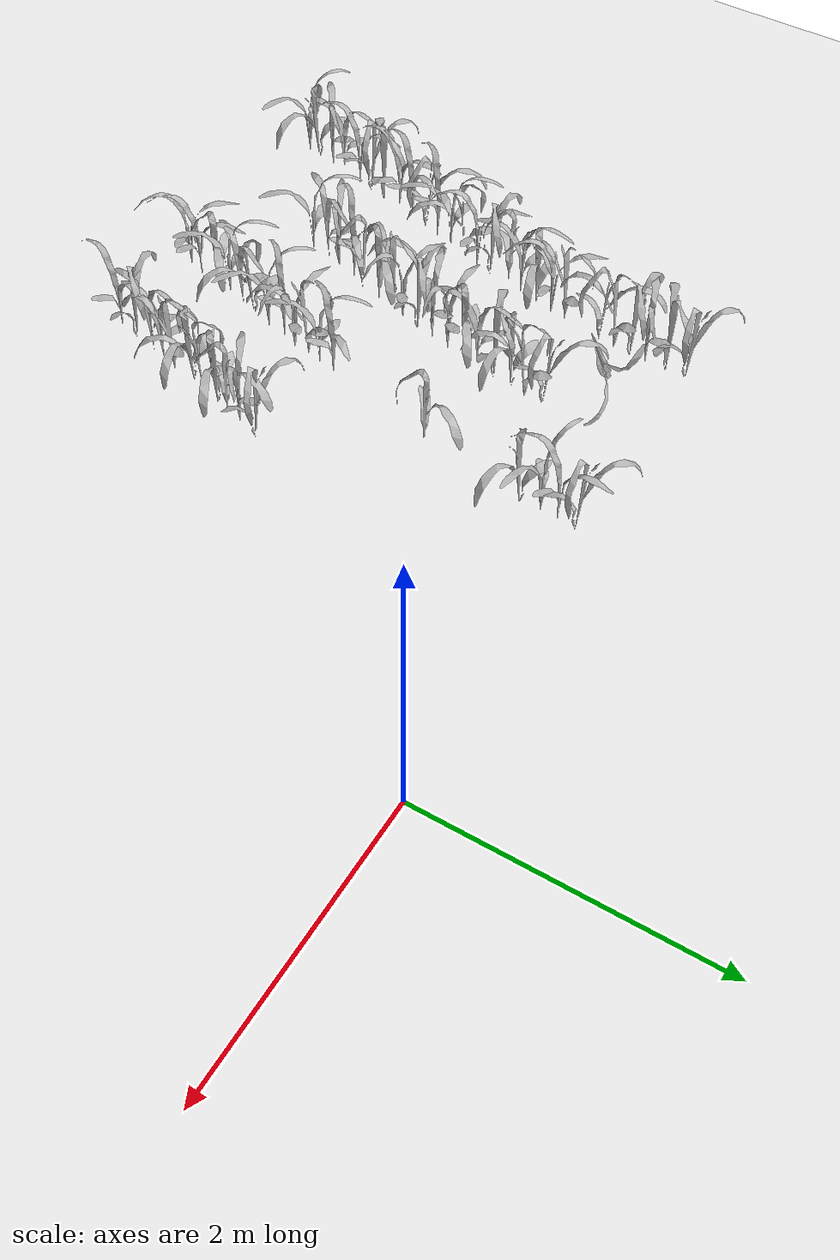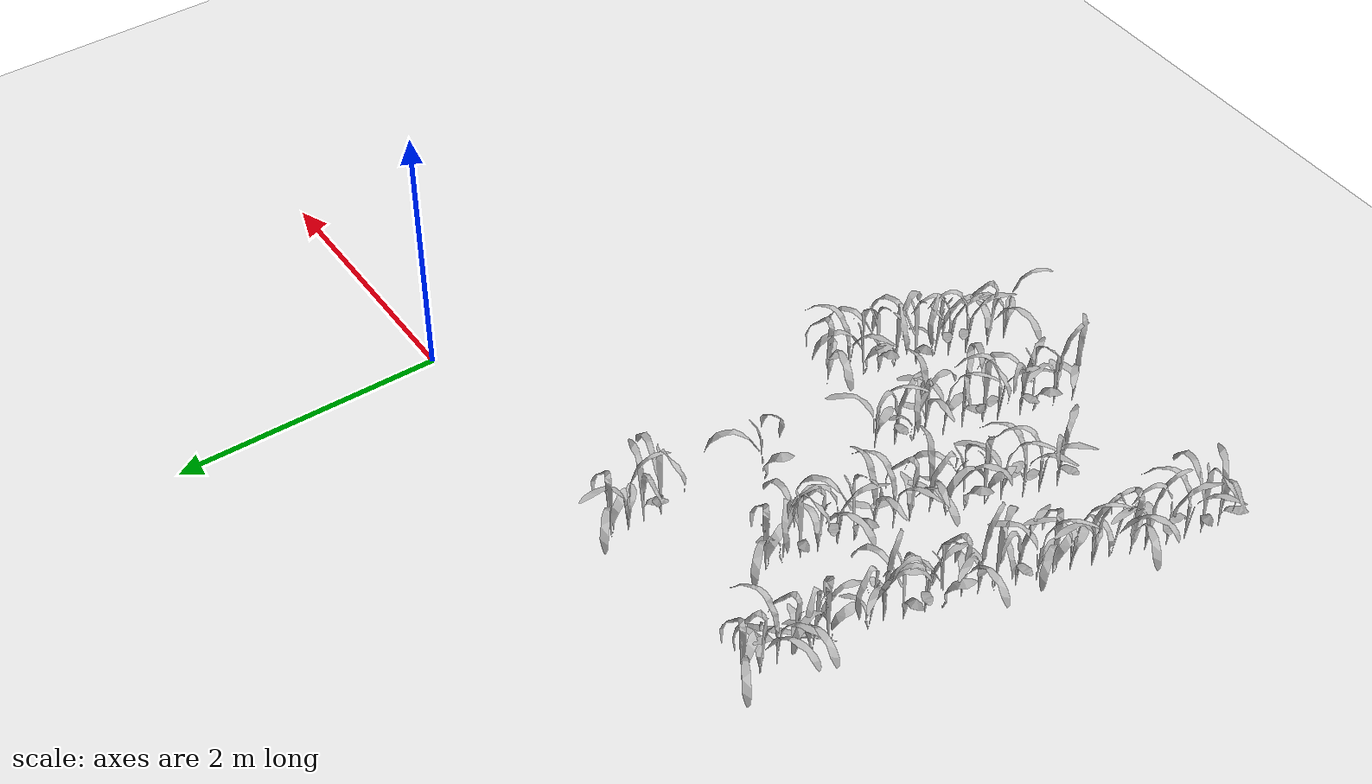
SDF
<sdf version="1.7">
 <world name="default">
  <model name="maize_02_0010">
   <pose>-4.40786 -3.49529 -1e-06 6e-06 -8.9e-05 1.60225</pose>
   <link name="maize_02_link">
    <inertial>
     <pose>0 0 0.01 0 -0 0</pose>
     <mass>0.3</mass>
     <inertia>
      <ixx>0.00334167</ixx>
      <ixy>0</ixy>
      <ixz>0</ixz>
      <iyy>0.00334167</iyy>
      <iyz>0</iyz>
      <izz>1.66667e-05</izz>
     </inertia>
     <pose>0 0 0.1 0 -0 0</pose>
    </inertial>
    <visual name="visual">
     <geometry>
      <mesh><uri>model://maize_02/meshes/maize_02.dae</uri><scale>0.683166 0.683166 0.683166</scale></mesh>
     </geometry>
    </visual>
   </link>
   <static>0</static>
  </model>
  <model name="maize_01_0011">
   <pose>-4.36571 -3.38741 -0 -5e-06 -2.8e-05 0.583081</pose>
   <link name="maize_01_link">
    <inertial>
     <pose>0 0 0.01 0 -0 0</pose>
     <mass>0.3</mass>
     <inertia>
      <ixx>0.00334167</ixx>
      <ixy>0</ixy>
      <ixz>0</ixz>
      <iyy>0.00334167</iyy>
      <iyz>0</iyz>
      <izz>1.66667e-05</izz>
     </inertia>
     <pose>0 0 0.1 0 -0 0</pose>
    </inertial>
    <visual name="visual">
     <geometry>
      <mesh><uri>model://maize_01/meshes/maize_01.dae</uri><scale>0.683166 0.683166 0.683166</scale></mesh>
     </geometry>
    </visual>
   </link>
   <static>0</static>
  </model>
  <model name="maize_02_0012">
   <pose>-4.34671 -3.25216 -1e-06 -6e-06 7.9e-05 -0.329562</pose>
   <link name="maize_02_link">
    <inertial>
     <pose>0 0 0.01 0 -0 0</pose>
     <mass>0.3</mass>
     <inertia>
      <ixx>0.00334167</ixx>
      <ixy>0</ixy>
      <ixz>0</ixz>
      <iyy>0.00334167</iyy>
      <iyz>0</iyz>
      <izz>1.66667e-05</izz>
     </inertia>
     <pose>0 0 0.1 0 -0 0</pose>
    </inertial>
    <visual name="visual">
     <geometry>
      <mesh><uri>model://maize_02/meshes/maize_02.dae</uri><scale>0.683166 0.683166 0.683166</scale></mesh>
     </geometry>
    </visual>
   </link>
   <static>0</static>
  </model>
  <model name="maize_02_0013">
   <pose>-4.31019 -3.12789 -0.000245 1.2e-05 1.4e-05 0.347552</pose>
   <link name="maize_02_link">
    <inertial>
     <pose>0 0 0.01 0 -0 0</pose>
     <mass>0.3</mass>
     <inertia>
      <ixx>0.00334167</ixx>
      <ixy>0</ixy>
      <ixz>0</ixz>
      <iyy>0.00334167</iyy>
      <iyz>0</iyz>
      <izz>1.66667e-05</izz>
     </inertia>
     <pose>0 0 0.1 0 -0 0</pose>
    </inertial>
    <visual name="visual">
     <geometry>
      <mesh><uri>model://maize_02/meshes/maize_02.dae</uri><scale>0.683166 0.683166 0.683166</scale></mesh>
     </geometry>
    </visual>
   </link>
   <static>0</static>
  </model>
  <model name="maize_02_0014">
   <pose>-4.26656 -2.97332 -0 -5e-06 -2.8e-05 -2.56514</pose>
   <link name="maize_02_link">
    <inertial>
     <pose>0 0 0.01 0 -0 0</pose>
     <mass>0.3</mass>
     <inertia>
      <ixx>0.00334167</ixx>
      <ixy>0</ixy>
      <ixz>0</ixz>
      <iyy>0.00334167</iyy>
      <iyz>0</iyz>
      <izz>1.66667e-05</izz>
     </inertia>
     <pose>0 0 0.1 0 -0 0</pose>
    </inertial>
    <visual name="visual">
     <geometry>
      <mesh><uri>model://maize_02/meshes/maize_02.dae</uri><scale>0.683166 0.683166 0.683166</scale></mesh>
     </geometry>
    </visual>
   </link>
   <static>0</static>
  </model>
  <model name="maize_01_0015">
   <pose>-4.24242 -2.86003 -0.000245 -1.4e-05 -1.2e-05 -2.74685</pose>
   <link name="maize_01_link">
    <inertial>
     <pose>0 0 0.01 0 -0 0</pose>
     <mass>0.3</mass>
     <inertia>
      <ixx>0.00334167</ixx>
      <ixy>0</ixy>
      <ixz>0</ixz>
      <iyy>0.00334167</iyy>
      <iyz>0</iyz>
      <izz>1.66667e-05</izz>
     </inertia>
     <pose>0 0 0.1 0 -0 0</pose>
    </inertial>
    <visual name="visual">
     <geometry>
      <mesh><uri>model://maize_01/meshes/maize_01.dae</uri><scale>0.683166 0.683166 0.683166</scale></mesh>
     </geometry>
    </visual>
   </link>
   <static>0</static>
  </model>
  <model name="maize_01_0016">
   <pose>-4.19923 -2.72609 -0 -4.8e-05 -6e-06 -1.69412</pose>
   <link name="maize_01_link">
    <inertial>
     <pose>0 0 0.01 0 -0 0</pose>
     <mass>0.3</mass>
     <inertia>
      <ixx>0.00334167</ixx>
      <ixy>0</ixy>
      <ixz>0</ixz>
      <iyy>0.00334167</iyy>
      <iyz>0</iyz>
      <izz>1.66667e-05</izz>
     </inertia>
     <pose>0 0 0.1 0 -0 0</pose>
    </inertial>
    <visual name="visual">
     <geometry>
      <mesh><uri>model://maize_01/meshes/maize_01.dae</uri><scale>0.683166 0.683166 0.683166</scale></mesh>
     </geometry>
    </visual>
   </link>
   <static>0</static>
  </model>
  <model name="maize_02_0017">
   <pose>-4.17695 -2.58355 -1e-06 -8.3e-05 -6e-06 -2.62048</pose>
   <link name="maize_02_link">
    <inertial>
     <pose>0 0 0.01 0 -0 0</pose>
     <mass>0.3</mass>
     <inertia>
      <ixx>0.00334167</ixx>
      <ixy>0</ixy>
      <ixz>0</ixz>
      <iyy>0.00334167</iyy>
      <iyz>0</iyz>
      <izz>1.66667e-05</izz>
     </inertia>
     <pose>0 0 0.1 0 -0 0</pose>
    </inertial>
    <visual name="visual">
     <geometry>
      <mesh><uri>model://maize_02/meshes/maize_02.dae</uri><scale>0.683166 0.683166 0.683166</scale></mesh>
     </geometry>
    </visual>
   </link>
   <static>0</static>
  </model>
  <model name="maize_02_0018">
   <pose>-4.12042 -2.44918 1e-06 2e-06 0.000116 -3.07479</pose>
   <link name="maize_02_link">
    <inertial>
     <pose>0 0 0.01 0 -0 0</pose>
     <mass>0.3</mass>
     <inertia>
      <ixx>0.00334167</ixx>
      <ixy>0</ixy>
      <ixz>0</ixz>
      <iyy>0.00334167</iyy>
      <iyz>0</iyz>
      <izz>1.66667e-05</izz>
     </inertia>
     <pose>0 0 0.1 0 -0 0</pose>
    </inertial>
    <visual name="visual">
     <geometry>
      <mesh><uri>model://maize_02/meshes/maize_02.dae</uri><scale>0.683166 0.683166 0.683166</scale></mesh>
     </geometry>
    </visual>
   </link>
   <static>0</static>
  </model>
  <model name="maize_01_0019">
   <pose>-4.09401 -2.31646 -0 -2.8e-05 5e-06 2.97261</pose>
   <link name="maize_01_link">
    <inertial>
     <pose>0 0 0.01 0 -0 0</pose>
     <mass>0.3</mass>
     <inertia>
      <ixx>0.00334167</ixx>
      <ixy>0</ixy>
      <ixz>0</ixz>
      <iyy>0.00334167</iyy>
      <iyz>0</iyz>
      <izz>1.66667e-05</izz>
     </inertia>
     <pose>0 0 0.1 0 -0 0</pose>
    </inertial>
    <visual name="visual">
     <geometry>
      <mesh><uri>model://maize_01/meshes/maize_01.dae</uri><scale>0.683166 0.683166 0.683166</scale></mesh>
     </geometry>
    </visual>
   </link>
   <static>0</static>
  </model>
  <model name="maize_02_0020">
   <pose>-4.06344 -2.20729 -1e-06 -8.9e-05 -6e-06 2.96076</pose>
   <link name="maize_02_link">
    <inertial>
     <pose>0 0 0.01 0 -0 0</pose>
     <mass>0.3</mass>
     <inertia>
      <ixx>0.00334167</ixx>
      <ixy>0</ixy>
      <ixz>0</ixz>
      <iyy>0.00334167</iyy>
      <iyz>0</iyz>
      <izz>1.66667e-05</izz>
     </inertia>
     <pose>0 0 0.1 0 -0 0</pose>
    </inertial>
    <visual name="visual">
     <geometry>
      <mesh><uri>model://maize_02/meshes/maize_02.dae</uri><scale>0.683166 0.683166 0.683166</scale></mesh>
     </geometry>
    </visual>
   </link>
   <static>0</static>
  </model>
  <model name="maize_02_0021">
   <pose>-4.01691 -2.0727 -1e-06 -6e-06 8.6e-05 0.953992</pose>
   <link name="maize_02_link">
    <inertial>
     <pose>0 0 0.01 0 -0 0</pose>
     <mass>0.3</mass>
     <inertia>
      <ixx>0.00334167</ixx>
      <ixy>0</ixy>
      <ixz>0</ixz>
      <iyy>0.00334167</iyy>
      <iyz>0</iyz>
      <izz>1.66667e-05</izz>
     </inertia>
     <pose>0 0 0.1 0 -0 0</pose>
    </inertial>
    <visual name="visual">
     <geometry>
      <mesh><uri>model://maize_02/meshes/maize_02.dae</uri><scale>0.683166 0.683166 0.683166</scale></mesh>
     </geometry>
    </visual>
   </link>
   <static>0</static>
  </model>
  <model name="maize_01_0022">
   <pose>-3.97051 -1.92991 -0.000245 -1.2e-05 1.4e-05 -0.147421</pose>
   <link name="maize_01_link">
    <inertial>
     <pose>0 0 0.01 0 -0 0</pose>
     <mass>0.3</mass>
     <inertia>
      <ixx>0.00334167</ixx>
      <ixy>0</ixy>
      <ixz>0</ixz>
      <iyy>0.00334167</iyy>
      <iyz>0</iyz>
      <izz>1.66667e-05</izz>
     </inertia>
     <pose>0 0 0.1 0 -0 0</pose>
    </inertial>
    <visual name="visual">
     <geometry>
      <mesh><uri>model://maize_01/meshes/maize_01.dae</uri><scale>0.683166 0.683166 0.683166</scale></mesh>
     </geometry>
    </visual>
   </link>
   <static>0</static>
  </model>
  <model name="maize_02_0023">
   <pose>-3.93771 -1.81544 1e-06 -3e-06 0.000156 -2.11151</pose>
   <link name="maize_02_link">
    <inertial>
     <pose>0 0 0.01 0 -0 0</pose>
     <mass>0.3</mass>
     <inertia>
      <ixx>0.00334167</ixx>
      <ixy>0</ixy>
      <ixz>0</ixz>
      <iyy>0.00334167</iyy>
      <iyz>0</iyz>
      <izz>1.66667e-05</izz>
     </inertia>
     <pose>0 0 0.1 0 -0 0</pose>
    </inertial>
    <visual name="visual">
     <geometry>
      <mesh><uri>model://maize_02/meshes/maize_02.dae</uri><scale>0.683166 0.683166 0.683166</scale></mesh>
     </geometry>
    </visual>
   </link>
   <static>0</static>
  </model>
  <model name="maize_01_0024">
   <pose>-3.90844 -1.69421 -1e-06 -8.6e-05 6e-06 -2.31971</pose>
   <link name="maize_01_link">
    <inertial>
     <pose>0 0 0.01 0 -0 0</pose>
     <mass>0.3</mass>
     <inertia>
      <ixx>0.00334167</ixx>
      <ixy>0</ixy>
      <ixz>0</ixz>
      <iyy>0.00334167</iyy>
      <iyz>0</iyz>
      <izz>1.66667e-05</izz>
     </inertia>
     <pose>0 0 0.1 0 -0 0</pose>
    </inertial>
    <visual name="visual">
     <geometry>
      <mesh><uri>model://maize_01/meshes/maize_01.dae</uri><scale>0.683166 0.683166 0.683166</scale></mesh>
     </geometry>
    </visual>
   </link>
   <static>0</static>
  </model>
  <model name="maize_01_0025">
   <pose>-3.89953 -1.5496 1e-06 -3e-06 -0.000156 2.05247</pose>
   <link name="maize_01_link">
    <inertial>
     <pose>0 0 0.01 0 -0 0</pose>
     <mass>0.3</mass>
     <inertia>
      <ixx>0.00334167</ixx>
      <ixy>0</ixy>
      <ixz>0</ixz>
      <iyy>0.00334167</iyy>
      <iyz>0</iyz>
      <izz>1.66667e-05</izz>
     </inertia>
     <pose>0 0 0.1 0 -0 0</pose>
    </inertial>
    <visual name="visual">
     <geometry>
      <mesh><uri>model://maize_01/meshes/maize_01.dae</uri><scale>0.683166 0.683166 0.683166</scale></mesh>
     </geometry>
    </visual>
   </link>
   <static>0</static>
  </model>
  <model name="maize_02_0026">
   <pose>-3.86631 -1.43265 -1e-06 6e-06 8.9e-05 0.61974</pose>
   <link name="maize_02_link">
    <inertial>
     <pose>0 0 0.01 0 -0 0</pose>
     <mass>0.3</mass>
     <inertia>
      <ixx>0.00334167</ixx>
      <ixy>0</ixy>
      <ixz>0</ixz>
      <iyy>0.00334167</iyy>
      <iyz>0</iyz>
      <izz>1.66667e-05</izz>
     </inertia>
     <pose>0 0 0.1 0 -0 0</pose>
    </inertial>
    <visual name="visual">
     <geometry>
      <mesh><uri>model://maize_02/meshes/maize_02.dae</uri><scale>0.683166 0.683166 0.683166</scale></mesh>
     </geometry>
    </visual>
   </link>
   <static>0</static>
  </model>
  <model name="maize_01_0027">
   <pose>-3.82293 -1.29197 1e-06 -0.000156 -3e-06 1.10234</pose>
   <link name="maize_01_link">
    <inertial>
     <pose>0 0 0.01 0 -0 0</pose>
     <mass>0.3</mass>
     <inertia>
      <ixx>0.00334167</ixx>
      <ixy>0</ixy>
      <ixz>0</ixz>
      <iyy>0.00334167</iyy>
      <iyz>0</iyz>
      <izz>1.66667e-05</izz>
     </inertia>
     <pose>0 0 0.1 0 -0 0</pose>
    </inertial>
    <visual name="visual">
     <geometry>
      <mesh><uri>model://maize_01/meshes/maize_01.dae</uri><scale>0.683166 0.683166 0.683166</scale></mesh>
     </geometry>
    </visual>
   </link>
   <static>0</static>
  </model>
  <model name="maize_02_0028">
   <pose>-3.7826 -1.15412 -0 2.8e-05 5e-06 -1.97203</pose>
   <link name="maize_02_link">
    <inertial>
     <pose>0 0 0.01 0 -0 0</pose>
     <mass>0.3</mass>
     <inertia>
      <ixx>0.00334167</ixx>
      <ixy>0</ixy>
      <ixz>0</ixz>
      <iyy>0.00334167</iyy>
      <iyz>0</iyz>
      <izz>1.66667e-05</izz>
     </inertia>
     <pose>0 0 0.1 0 -0 0</pose>
    </inertial>
    <visual name="visual">
     <geometry>
      <mesh><uri>model://maize_02/meshes/maize_02.dae</uri><scale>0.683166 0.683166 0.683166</scale></mesh>
     </geometry>
    </visual>
   </link>
   <static>0</static>
  </model>
  <model name="maize_01_0029">
   <pose>-3.77198 -1.04541 -0 2.8e-05 -5e-06 -1.11484</pose>
   <link name="maize_01_link">
    <inertial>
     <pose>0 0 0.01 0 -0 0</pose>
     <mass>0.3</mass>
     <inertia>
      <ixx>0.00334167</ixx>
      <ixy>0</ixy>
      <ixz>0</ixz>
      <iyy>0.00334167</iyy>
      <iyz>0</iyz>
      <izz>1.66667e-05</izz>
     </inertia>
     <pose>0 0 0.1 0 -0 0</pose>
    </inertial>
    <visual name="visual">
     <geometry>
      <mesh><uri>model://maize_01/meshes/maize_01.dae</uri><scale>0.683166 0.683166 0.683166</scale></mesh>
     </geometry>
    </visual>
   </link>
   <static>0</static>
  </model>
  <model name="maize_02_0030">
   <pose>-3.7565 -0.837103 0.009953 -1.5708 -0.00477 -0.829308</pose>
   <link name="maize_02_link">
    <inertial>
     <pose>0 0 0.01 0 -0 0</pose>
     <mass>0.3</mass>
     <inertia>
      <ixx>0.00334167</ixx>
      <ixy>0</ixy>
      <ixz>0</ixz>
      <iyy>0.00334167</iyy>
      <iyz>0</iyz>
      <izz>1.66667e-05</izz>
     </inertia>
     <pose>0 0 0.1 0 -0 0</pose>
    </inertial>
    <visual name="visual">
     <geometry>
      <mesh><uri>model://maize_02/meshes/maize_02.dae</uri><scale>0.683166 0.683166 0.683166</scale></mesh>
     </geometry>
    </visual>
   </link>
   <static>0</static>
  </model>
  <model name="maize_01_0031">
   <pose>-3.72155 -0.761612 -0 5e-06 -2.8e-05 2.68565</pose>
   <link name="maize_01_link">
    <inertial>
     <pose>0 0 0.01 0 -0 0</pose>
     <mass>0.3</mass>
     <inertia>
      <ixx>0.00334167</ixx>
      <ixy>0</ixy>
      <ixz>0</ixz>
      <iyy>0.00334167</iyy>
      <iyz>0</iyz>
      <izz>1.66667e-05</izz>
     </inertia>
     <pose>0 0 0.1 0 -0 0</pose>
    </inertial>
    <visual name="visual">
     <geometry>
      <mesh><uri>model://maize_01/meshes/maize_01.dae</uri><scale>0.683166 0.683166 0.683166</scale></mesh>
     </geometry>
    </visual>
   </link>
   <static>0</static>
  </model>
  <model name="maize_01_0032">
   <pose>-3.70659 -0.645785 -0 5e-06 -2.8e-05 -0.829071</pose>
   <link name="maize_01_link">
    <inertial>
     <pose>0 0 0.01 0 -0 0</pose>
     <mass>0.3</mass>
     <inertia>
      <ixx>0.00334167</ixx>
      <ixy>0</ixy>
      <ixz>0</ixz>
      <iyy>0.00334167</iyy>
      <iyz>0</iyz>
      <izz>1.66667e-05</izz>
     </inertia>
     <pose>0 0 0.1 0 -0 0</pose>
    </inertial>
    <visual name="visual">
     <geometry>
      <mesh><uri>model://maize_01/meshes/maize_01.dae</uri><scale>0.683166 0.683166 0.683166</scale></mesh>
     </geometry>
    </visual>
   </link>
   <static>0</static>
  </model>
  <model name="maize_01_0033">
   <pose>-3.68856 -0.516251 -0 -2.8e-05 -5e-06 -2.32412</pose>
   <link name="maize_01_link">
    <inertial>
     <pose>0 0 0.01 0 -0 0</pose>
     <mass>0.3</mass>
     <inertia>
      <ixx>0.00334167</ixx>
      <ixy>0</ixy>
      <ixz>0</ixz>
      <iyy>0.00334167</iyy>
      <iyz>0</iyz>
      <izz>1.66667e-05</izz>
     </inertia>
     <pose>0 0 0.1 0 -0 0</pose>
    </inertial>
    <visual name="visual">
     <geometry>
      <mesh><uri>model://maize_01/meshes/maize_01.dae</uri><scale>0.683166 0.683166 0.683166</scale></mesh>
     </geometry>
    </visual>
   </link>
   <static>0</static>
  </model>
  <model name="maize_02_0034">
   <pose>-3.66675 -0.396472 -0 4.8e-05 6e-06 -0.572521</pose>
   <link name="maize_02_link">
    <inertial>
     <pose>0 0 0.01 0 -0 0</pose>
     <mass>0.3</mass>
     <inertia>
      <ixx>0.00334167</ixx>
      <ixy>0</ixy>
      <ixz>0</ixz>
      <iyy>0.00334167</iyy>
      <iyz>0</iyz>
      <izz>1.66667e-05</izz>
     </inertia>
     <pose>0 0 0.1 0 -0 0</pose>
    </inertial>
    <visual name="visual">
     <geometry>
      <mesh><uri>model://maize_02/meshes/maize_02.dae</uri><scale>0.683166 0.683166 0.683166</scale></mesh>
     </geometry>
    </visual>
   </link>
   <static>0</static>
  </model>
  <model name="maize_01_0035">
   <pose>-3.68278 -0.252334 -0 -2.8e-05 -5e-06 -1.92935</pose>
   <link name="maize_01_link">
    <inertial>
     <pose>0 0 0.01 0 -0 0</pose>
     <mass>0.3</mass>
     <inertia>
      <ixx>0.00334167</ixx>
      <ixy>0</ixy>
      <ixz>0</ixz>
      <iyy>0.00334167</iyy>
      <iyz>0</iyz>
      <izz>1.66667e-05</izz>
     </inertia>
     <pose>0 0 0.1 0 -0 0</pose>
    </inertial>
    <visual name="visual">
     <geometry>
      <mesh><uri>model://maize_01/meshes/maize_01.dae</uri><scale>0.683166 0.683166 0.683166</scale></mesh>
     </geometry>
    </visual>
   </link>
   <static>0</static>
  </model>
  <model name="maize_01_0036">
   <pose>-3.67981 -0.112768 -1e-06 -8.9e-05 -6e-06 -2.89943</pose>
   <link name="maize_01_link">
    <inertial>
     <pose>0 0 0.01 0 -0 0</pose>
     <mass>0.3</mass>
     <inertia>
      <ixx>0.00334167</ixx>
      <ixy>0</ixy>
      <ixz>0</ixz>
      <iyy>0.00334167</iyy>
      <iyz>0</iyz>
      <izz>1.66667e-05</izz>
     </inertia>
     <pose>0 0 0.1 0 -0 0</pose>
    </inertial>
    <visual name="visual">
     <geometry>
      <mesh><uri>model://maize_01/meshes/maize_01.dae</uri><scale>0.683166 0.683166 0.683166</scale></mesh>
     </geometry>
    </visual>
   </link>
   <static>0</static>
  </model>
  <model name="maize_02_0076">
   <pose>-3.50202 -2.87021 -0 2.8e-05 -5e-06 1.23043</pose>
   <link name="maize_02_link">
    <inertial>
     <pose>0 0 0.01 0 -0 0</pose>
     <mass>0.3</mass>
     <inertia>
      <ixx>0.00334167</ixx>
      <ixy>0</ixy>
      <ixz>0</ixz>
      <iyy>0.00334167</iyy>
      <iyz>0</iyz>
      <izz>1.66667e-05</izz>
     </inertia>
     <pose>0 0 0.1 0 -0 0</pose>
    </inertial>
    <visual name="visual">
     <geometry>
      <mesh><uri>model://maize_02/meshes/maize_02.dae</uri><scale>0.683166 0.683166 0.683166</scale></mesh>
     </geometry>
    </visual>
   </link>
   <static>0</static>
  </model>
  <model name="maize_02_0077">
   <pose>-3.47733 -2.72731 1e-06 -3e-06 -0.000156 -0.078349</pose>
   <link name="maize_02_link">
    <inertial>
     <pose>0 0 0.01 0 -0 0</pose>
     <mass>0.3</mass>
     <inertia>
      <ixx>0.00334167</ixx>
      <ixy>0</ixy>
      <ixz>0</ixz>
      <iyy>0.00334167</iyy>
      <iyz>0</iyz>
      <izz>1.66667e-05</izz>
     </inertia>
     <pose>0 0 0.1 0 -0 0</pose>
    </inertial>
    <visual name="visual">
     <geometry>
      <mesh><uri>model://maize_02/meshes/maize_02.dae</uri><scale>0.683166 0.683166 0.683166</scale></mesh>
     </geometry>
    </visual>
   </link>
   <static>0</static>
  </model>
  <model name="maize_02_0078">
   <pose>-3.43995 -2.61803 -0 5e-06 2.8e-05 -0.448794</pose>
   <link name="maize_02_link">
    <inertial>
     <pose>0 0 0.01 0 -0 0</pose>
     <mass>0.3</mass>
     <inertia>
      <ixx>0.00334167</ixx>
      <ixy>0</ixy>
      <ixz>0</ixz>
      <iyy>0.00334167</iyy>
      <iyz>0</iyz>
      <izz>1.66667e-05</izz>
     </inertia>
     <pose>0 0 0.1 0 -0 0</pose>
    </inertial>
    <visual name="visual">
     <geometry>
      <mesh><uri>model://maize_02/meshes/maize_02.dae</uri><scale>0.683166 0.683166 0.683166</scale></mesh>
     </geometry>
    </visual>
   </link>
   <static>0</static>
  </model>
  <model name="maize_02_0079">
   <pose>-3.38802 -2.46608 -0 -4.8e-05 -6e-06 2.88127</pose>
   <link name="maize_02_link">
    <inertial>
     <pose>0 0 0.01 0 -0 0</pose>
     <mass>0.3</mass>
     <inertia>
      <ixx>0.00334167</ixx>
      <ixy>0</ixy>
      <ixz>0</ixz>
      <iyy>0.00334167</iyy>
      <iyz>0</iyz>
      <izz>1.66667e-05</izz>
     </inertia>
     <pose>0 0 0.1 0 -0 0</pose>
    </inertial>
    <visual name="visual">
     <geometry>
      <mesh><uri>model://maize_02/meshes/maize_02.dae</uri><scale>0.683166 0.683166 0.683166</scale></mesh>
     </geometry>
    </visual>
   </link>
   <static>0</static>
  </model>
  <model name="maize_01_0080">
   <pose>-3.33888 -2.36785 -1e-06 8.6e-05 -6e-06 2.50035</pose>
   <link name="maize_01_link">
    <inertial>
     <pose>0 0 0.01 0 -0 0</pose>
     <mass>0.3</mass>
     <inertia>
      <ixx>0.00334167</ixx>
      <ixy>0</ixy>
      <ixz>0</ixz>
      <iyy>0.00334167</iyy>
      <iyz>0</iyz>
      <izz>1.66667e-05</izz>
     </inertia>
     <pose>0 0 0.1 0 -0 0</pose>
    </inertial>
    <visual name="visual">
     <geometry>
      <mesh><uri>model://maize_01/meshes/maize_01.dae</uri><scale>0.683166 0.683166 0.683166</scale></mesh>
     </geometry>
    </visual>
   </link>
   <static>0</static>
  </model>
  <model name="maize_01_0081">
   <pose>-3.30256 -2.21604 -0 2.8e-05 5e-06 1.55681</pose>
   <link name="maize_01_link">
    <inertial>
     <pose>0 0 0.01 0 -0 0</pose>
     <mass>0.3</mass>
     <inertia>
      <ixx>0.00334167</ixx>
      <ixy>0</ixy>
      <ixz>0</ixz>
      <iyy>0.00334167</iyy>
      <iyz>0</iyz>
      <izz>1.66667e-05</izz>
     </inertia>
     <pose>0 0 0.1 0 -0 0</pose>
    </inertial>
    <visual name="visual">
     <geometry>
      <mesh><uri>model://maize_01/meshes/maize_01.dae</uri><scale>0.683166 0.683166 0.683166</scale></mesh>
     </geometry>
    </visual>
   </link>
   <static>0</static>
  </model>
  <model name="maize_01_0082">
   <pose>-3.2827 -2.08157 -0 5e-06 -2.8e-05 -1.41117</pose>
   <link name="maize_01_link">
    <inertial>
     <pose>0 0 0.01 0 -0 0</pose>
     <mass>0.3</mass>
     <inertia>
      <ixx>0.00334167</ixx>
      <ixy>0</ixy>
      <ixz>0</ixz>
      <iyy>0.00334167</iyy>
      <iyz>0</iyz>
      <izz>1.66667e-05</izz>
     </inertia>
     <pose>0 0 0.1 0 -0 0</pose>
    </inertial>
    <visual name="visual">
     <geometry>
      <mesh><uri>model://maize_01/meshes/maize_01.dae</uri><scale>0.683166 0.683166 0.683166</scale></mesh>
     </geometry>
    </visual>
   </link>
   <static>0</static>
  </model>
  <model name="maize_02_0083">
   <pose>-3.22256 -1.97658 -0 5e-06 -2.8e-05 -1.33515</pose>
   <link name="maize_02_link">
    <inertial>
     <pose>0 0 0.01 0 -0 0</pose>
     <mass>0.3</mass>
     <inertia>
      <ixx>0.00334167</ixx>
      <ixy>0</ixy>
      <ixz>0</ixz>
      <iyy>0.00334167</iyy>
      <iyz>0</iyz>
      <izz>1.66667e-05</izz>
     </inertia>
     <pose>0 0 0.1 0 -0 0</pose>
    </inertial>
    <visual name="visual">
     <geometry>
      <mesh><uri>model://maize_02/meshes/maize_02.dae</uri><scale>0.683166 0.683166 0.683166</scale></mesh>
     </geometry>
    </visual>
   </link>
   <static>0</static>
  </model>
  <model name="maize_01_0084">
   <pose>-3.18759 -1.83846 -0 2.8e-05 -5e-06 -2.23258</pose>
   <link name="maize_01_link">
    <inertial>
     <pose>0 0 0.01 0 -0 0</pose>
     <mass>0.3</mass>
     <inertia>
      <ixx>0.00334167</ixx>
      <ixy>0</ixy>
      <ixz>0</ixz>
      <iyy>0.00334167</iyy>
      <iyz>0</iyz>
      <izz>1.66667e-05</izz>
     </inertia>
     <pose>0 0 0.1 0 -0 0</pose>
    </inertial>
    <visual name="visual">
     <geometry>
      <mesh><uri>model://maize_01/meshes/maize_01.dae</uri><scale>0.683166 0.683166 0.683166</scale></mesh>
     </geometry>
    </visual>
   </link>
   <static>0</static>
  </model>
  <model name="maize_02_0085">
   <pose>-3.1699 -1.71527 -1e-06 -6e-06 -8.3e-05 -0.582872</pose>
   <link name="maize_02_link">
    <inertial>
     <pose>0 0 0.01 0 -0 0</pose>
     <mass>0.3</mass>
     <inertia>
      <ixx>0.00334167</ixx>
      <ixy>0</ixy>
      <ixz>0</ixz>
      <iyy>0.00334167</iyy>
      <iyz>0</iyz>
      <izz>1.66667e-05</izz>
     </inertia>
     <pose>0 0 0.1 0 -0 0</pose>
    </inertial>
    <visual name="visual">
     <geometry>
      <mesh><uri>model://maize_02/meshes/maize_02.dae</uri><scale>0.683166 0.683166 0.683166</scale></mesh>
     </geometry>
    </visual>
   </link>
   <static>0</static>
  </model>
  <model name="maize_02_0086">
   <pose>-3.13196 -1.57457 -0 -5e-06 2.8e-05 -1.022</pose>
   <link name="maize_02_link">
    <inertial>
     <pose>0 0 0.01 0 -0 0</pose>
     <mass>0.3</mass>
     <inertia>
      <ixx>0.00334167</ixx>
      <ixy>0</ixy>
      <ixz>0</ixz>
      <iyy>0.00334167</iyy>
      <iyz>0</iyz>
      <izz>1.66667e-05</izz>
     </inertia>
     <pose>0 0 0.1 0 -0 0</pose>
    </inertial>
    <visual name="visual">
     <geometry>
      <mesh><uri>model://maize_02/meshes/maize_02.dae</uri><scale>0.683166 0.683166 0.683166</scale></mesh>
     </geometry>
    </visual>
   </link>
   <static>0</static>
  </model>
  <model name="maize_01_0087">
   <pose>-3.10416 -1.43977 1e-06 -3e-06 0.000156 1.3568</pose>
   <link name="maize_01_link">
    <inertial>
     <pose>0 0 0.01 0 -0 0</pose>
     <mass>0.3</mass>
     <inertia>
      <ixx>0.00334167</ixx>
      <ixy>0</ixy>
      <ixz>0</ixz>
      <iyy>0.00334167</iyy>
      <iyz>0</iyz>
      <izz>1.66667e-05</izz>
     </inertia>
     <pose>0 0 0.1 0 -0 0</pose>
    </inertial>
    <visual name="visual">
     <geometry>
      <mesh><uri>model://maize_01/meshes/maize_01.dae</uri><scale>0.683166 0.683166 0.683166</scale></mesh>
     </geometry>
    </visual>
   </link>
   <static>0</static>
  </model>
  <model name="maize_02_0088">
   <pose>-3.07685 -1.31902 -0.000245 1.4e-05 -1.2e-05 0.36054</pose>
   <link name="maize_02_link">
    <inertial>
     <pose>0 0 0.01 0 -0 0</pose>
     <mass>0.3</mass>
     <inertia>
      <ixx>0.00334167</ixx>
      <ixy>0</ixy>
      <ixz>0</ixz>
      <iyy>0.00334167</iyy>
      <iyz>0</iyz>
      <izz>1.66667e-05</izz>
     </inertia>
     <pose>0 0 0.1 0 -0 0</pose>
    </inertial>
    <visual name="visual">
     <geometry>
      <mesh><uri>model://maize_02/meshes/maize_02.dae</uri><scale>0.683166 0.683166 0.683166</scale></mesh>
     </geometry>
    </visual>
   </link>
   <static>0</static>
  </model>
  <model name="maize_01_0089">
   <pose>-3.04901 -1.17785 -0 -2.8e-05 -5e-06 -1.96417</pose>
   <link name="maize_01_link">
    <inertial>
     <pose>0 0 0.01 0 -0 0</pose>
     <mass>0.3</mass>
     <inertia>
      <ixx>0.00334167</ixx>
      <ixy>0</ixy>
      <ixz>0</ixz>
      <iyy>0.00334167</iyy>
      <iyz>0</iyz>
      <izz>1.66667e-05</izz>
     </inertia>
     <pose>0 0 0.1 0 -0 0</pose>
    </inertial>
    <visual name="visual">
     <geometry>
      <mesh><uri>model://maize_01/meshes/maize_01.dae</uri><scale>0.683166 0.683166 0.683166</scale></mesh>
     </geometry>
    </visual>
   </link>
   <static>0</static>
  </model>
  <model name="maize_01_0090">
   <pose>-3.03486 -1.04684 -1e-06 -8.3e-05 -6e-06 0.783834</pose>
   <link name="maize_01_link">
    <inertial>
     <pose>0 0 0.01 0 -0 0</pose>
     <mass>0.3</mass>
     <inertia>
      <ixx>0.00334167</ixx>
      <ixy>0</ixy>
      <ixz>0</ixz>
      <iyy>0.00334167</iyy>
      <iyz>0</iyz>
      <izz>1.66667e-05</izz>
     </inertia>
     <pose>0 0 0.1 0 -0 0</pose>
    </inertial>
    <visual name="visual">
     <geometry>
      <mesh><uri>model://maize_01/meshes/maize_01.dae</uri><scale>0.683166 0.683166 0.683166</scale></mesh>
     </geometry>
    </visual>
   </link>
   <static>0</static>
  </model>
  <model name="maize_01_0091">
   <pose>-2.99364 -0.929546 -0 2.8e-05 5e-06 -0.493809</pose>
   <link name="maize_01_link">
    <inertial>
     <pose>0 0 0.01 0 -0 0</pose>
     <mass>0.3</mass>
     <inertia>
      <ixx>0.00334167</ixx>
      <ixy>0</ixy>
      <ixz>0</ixz>
      <iyy>0.00334167</iyy>
      <iyz>0</iyz>
      <izz>1.66667e-05</izz>
     </inertia>
     <pose>0 0 0.1 0 -0 0</pose>
    </inertial>
    <visual name="visual">
     <geometry>
      <mesh><uri>model://maize_01/meshes/maize_01.dae</uri><scale>0.683166 0.683166 0.683166</scale></mesh>
     </geometry>
    </visual>
   </link>
   <static>0</static>
  </model>
  <model name="maize_01_0092">
   <pose>-2.99395 -0.790672 -0 5e-06 2.8e-05 3.11328</pose>
   <link name="maize_01_link">
    <inertial>
     <pose>0 0 0.01 0 -0 0</pose>
     <mass>0.3</mass>
     <inertia>
      <ixx>0.00334167</ixx>
      <ixy>0</ixy>
      <ixz>0</ixz>
      <iyy>0.00334167</iyy>
      <iyz>0</iyz>
      <izz>1.66667e-05</izz>
     </inertia>
     <pose>0 0 0.1 0 -0 0</pose>
    </inertial>
    <visual name="visual">
     <geometry>
      <mesh><uri>model://maize_01/meshes/maize_01.dae</uri><scale>0.683166 0.683166 0.683166</scale></mesh>
     </geometry>
    </visual>
   </link>
   <static>0</static>
  </model>
  <model name="maize_02_0126">
   <pose>-2.93149 -3.49923 -0 -5e-06 2.8e-05 -1.79181</pose>
   <link name="maize_02_link">
    <inertial>
     <pose>0 0 0.01 0 -0 0</pose>
     <mass>0.3</mass>
     <inertia>
      <ixx>0.00334167</ixx>
      <ixy>0</ixy>
      <ixz>0</ixz>
      <iyy>0.00334167</iyy>
      <iyz>0</iyz>
      <izz>1.66667e-05</izz>
     </inertia>
     <pose>0 0 0.1 0 -0 0</pose>
    </inertial>
    <visual name="visual">
     <geometry>
      <mesh><uri>model://maize_02/meshes/maize_02.dae</uri><scale>0.683166 0.683166 0.683166</scale></mesh>
     </geometry>
    </visual>
   </link>
   <static>0</static>
  </model>
  <model name="maize_02_0127">
   <pose>-2.87751 -3.37431 -0 -2.8e-05 -5e-06 -2.35316</pose>
   <link name="maize_02_link">
    <inertial>
     <pose>0 0 0.01 0 -0 0</pose>
     <mass>0.3</mass>
     <inertia>
      <ixx>0.00334167</ixx>
      <ixy>0</ixy>
      <ixz>0</ixz>
      <iyy>0.00334167</iyy>
      <iyz>0</iyz>
      <izz>1.66667e-05</izz>
     </inertia>
     <pose>0 0 0.1 0 -0 0</pose>
    </inertial>
    <visual name="visual">
     <geometry>
      <mesh><uri>model://maize_02/meshes/maize_02.dae</uri><scale>0.683166 0.683166 0.683166</scale></mesh>
     </geometry>
    </visual>
   </link>
   <static>0</static>
  </model>
  <model name="maize_01_0128">
   <pose>-2.84475 -3.21298 -0 5e-06 2.8e-05 1.51664</pose>
   <link name="maize_01_link">
    <inertial>
     <pose>0 0 0.01 0 -0 0</pose>
     <mass>0.3</mass>
     <inertia>
      <ixx>0.00334167</ixx>
      <ixy>0</ixy>
      <ixz>0</ixz>
      <iyy>0.00334167</iyy>
      <iyz>0</iyz>
      <izz>1.66667e-05</izz>
     </inertia>
     <pose>0 0 0.1 0 -0 0</pose>
    </inertial>
    <visual name="visual">
     <geometry>
      <mesh><uri>model://maize_01/meshes/maize_01.dae</uri><scale>0.683166 0.683166 0.683166</scale></mesh>
     </geometry>
    </visual>
   </link>
   <static>0</static>
  </model>
  <model name="maize_02_0129">
   <pose>-2.83258 -3.10629 1e-06 -0.000156 3e-06 1.12285</pose>
   <link name="maize_02_link">
    <inertial>
     <pose>0 0 0.01 0 -0 0</pose>
     <mass>0.3</mass>
     <inertia>
      <ixx>0.00334167</ixx>
      <ixy>0</ixy>
      <ixz>0</ixz>
      <iyy>0.00334167</iyy>
      <iyz>0</iyz>
      <izz>1.66667e-05</izz>
     </inertia>
     <pose>0 0 0.1 0 -0 0</pose>
    </inertial>
    <visual name="visual">
     <geometry>
      <mesh><uri>model://maize_02/meshes/maize_02.dae</uri><scale>0.683166 0.683166 0.683166</scale></mesh>
     </geometry>
    </visual>
   </link>
   <static>0</static>
  </model>
  <model name="maize_02_0130">
   <pose>-2.7711 -2.95625 -0 2.8e-05 -5e-06 0.026838</pose>
   <link name="maize_02_link">
    <inertial>
     <pose>0 0 0.01 0 -0 0</pose>
     <mass>0.3</mass>
     <inertia>
      <ixx>0.00334167</ixx>
      <ixy>0</ixy>
      <ixz>0</ixz>
      <iyy>0.00334167</iyy>
      <iyz>0</iyz>
      <izz>1.66667e-05</izz>
     </inertia>
     <pose>0 0 0.1 0 -0 0</pose>
    </inertial>
    <visual name="visual">
     <geometry>
      <mesh><uri>model://maize_02/meshes/maize_02.dae</uri><scale>0.683166 0.683166 0.683166</scale></mesh>
     </geometry>
    </visual>
   </link>
   <static>0</static>
  </model>
  <model name="maize_01_0131">
   <pose>-2.74042 -2.84833 -1e-06 -8.9e-05 -6e-06 0.355027</pose>
   <link name="maize_01_link">
    <inertial>
     <pose>0 0 0.01 0 -0 0</pose>
     <mass>0.3</mass>
     <inertia>
      <ixx>0.00334167</ixx>
      <ixy>0</ixy>
      <ixz>0</ixz>
      <iyy>0.00334167</iyy>
      <iyz>0</iyz>
      <izz>1.66667e-05</izz>
     </inertia>
     <pose>0 0 0.1 0 -0 0</pose>
    </inertial>
    <visual name="visual">
     <geometry>
      <mesh><uri>model://maize_01/meshes/maize_01.dae</uri><scale>0.683166 0.683166 0.683166</scale></mesh>
     </geometry>
    </visual>
   </link>
   <static>0</static>
  </model>
  <model name="maize_02_0132">
   <pose>-2.69428 -2.6977 -1e-06 -6e-06 7.9e-05 1.43497</pose>
   <link name="maize_02_link">
    <inertial>
     <pose>0 0 0.01 0 -0 0</pose>
     <mass>0.3</mass>
     <inertia>
      <ixx>0.00334167</ixx>
      <ixy>0</ixy>
      <ixz>0</ixz>
      <iyy>0.00334167</iyy>
      <iyz>0</iyz>
      <izz>1.66667e-05</izz>
     </inertia>
     <pose>0 0 0.1 0 -0 0</pose>
    </inertial>
    <visual name="visual">
     <geometry>
      <mesh><uri>model://maize_02/meshes/maize_02.dae</uri><scale>0.683166 0.683166 0.683166</scale></mesh>
     </geometry>
    </visual>
   </link>
   <static>0</static>
  </model>
  <model name="maize_02_0133">
   <pose>-2.66452 -2.55337 -1e-06 6e-06 7.9e-05 2.95359</pose>
   <link name="maize_02_link">
    <inertial>
     <pose>0 0 0.01 0 -0 0</pose>
     <mass>0.3</mass>
     <inertia>
      <ixx>0.00334167</ixx>
      <ixy>0</ixy>
      <ixz>0</ixz>
      <iyy>0.00334167</iyy>
      <iyz>0</iyz>
      <izz>1.66667e-05</izz>
     </inertia>
     <pose>0 0 0.1 0 -0 0</pose>
    </inertial>
    <visual name="visual">
     <geometry>
      <mesh><uri>model://maize_02/meshes/maize_02.dae</uri><scale>0.683166 0.683166 0.683166</scale></mesh>
     </geometry>
    </visual>
   </link>
   <static>0</static>
  </model>
  <model name="maize_02_0134">
   <pose>-2.60651 -2.42917 -1e-06 6e-06 -8.9e-05 -1.11929</pose>
   <link name="maize_02_link">
    <inertial>
     <pose>0 0 0.01 0 -0 0</pose>
     <mass>0.3</mass>
     <inertia>
      <ixx>0.00334167</ixx>
      <ixy>0</ixy>
      <ixz>0</ixz>
      <iyy>0.00334167</iyy>
      <iyz>0</iyz>
      <izz>1.66667e-05</izz>
     </inertia>
     <pose>0 0 0.1 0 -0 0</pose>
    </inertial>
    <visual name="visual">
     <geometry>
      <mesh><uri>model://maize_02/meshes/maize_02.dae</uri><scale>0.683166 0.683166 0.683166</scale></mesh>
     </geometry>
    </visual>
   </link>
   <static>0</static>
  </model>
  <model name="maize_01_0135">
   <pose>-2.61156 -2.32896 -0 5e-06 2.8e-05 -0.588499</pose>
   <link name="maize_01_link">
    <inertial>
     <pose>0 0 0.01 0 -0 0</pose>
     <mass>0.3</mass>
     <inertia>
      <ixx>0.00334167</ixx>
      <ixy>0</ixy>
      <ixz>0</ixz>
      <iyy>0.00334167</iyy>
      <iyz>0</iyz>
      <izz>1.66667e-05</izz>
     </inertia>
     <pose>0 0 0.1 0 -0 0</pose>
    </inertial>
    <visual name="visual">
     <geometry>
      <mesh><uri>model://maize_01/meshes/maize_01.dae</uri><scale>0.683166 0.683166 0.683166</scale></mesh>
     </geometry>
    </visual>
   </link>
   <static>0</static>
  </model>
  <model name="maize_02_0136">
   <pose>-2.56333 -2.20671 -0 4.8e-05 6e-06 0.943891</pose>
   <link name="maize_02_link">
    <inertial>
     <pose>0 0 0.01 0 -0 0</pose>
     <mass>0.3</mass>
     <inertia>
      <ixx>0.00334167</ixx>
      <ixy>0</ixy>
      <ixz>0</ixz>
      <iyy>0.00334167</iyy>
      <iyz>0</iyz>
      <izz>1.66667e-05</izz>
     </inertia>
     <pose>0 0 0.1 0 -0 0</pose>
    </inertial>
    <visual name="visual">
     <geometry>
      <mesh><uri>model://maize_02/meshes/maize_02.dae</uri><scale>0.683166 0.683166 0.683166</scale></mesh>
     </geometry>
    </visual>
   </link>
   <static>0</static>
  </model>
  <model name="maize_02_0137">
   <pose>-2.50934 -2.06932 -0.000245 1.2e-05 -1.4e-05 3.07893</pose>
   <link name="maize_02_link">
    <inertial>
     <pose>0 0 0.01 0 -0 0</pose>
     <mass>0.3</mass>
     <inertia>
      <ixx>0.00334167</ixx>
      <ixy>0</ixy>
      <ixz>0</ixz>
      <iyy>0.00334167</iyy>
      <iyz>0</iyz>
      <izz>1.66667e-05</izz>
     </inertia>
     <pose>0 0 0.1 0 -0 0</pose>
    </inertial>
    <visual name="visual">
     <geometry>
      <mesh><uri>model://maize_02/meshes/maize_02.dae</uri><scale>0.683166 0.683166 0.683166</scale></mesh>
     </geometry>
    </visual>
   </link>
   <static>0</static>
  </model>
  <model name="maize_01_0138">
   <pose>-2.31482 -1.26895 -0 -5e-06 2.8e-05 1.87667</pose>
   <link name="maize_01_link">
    <inertial>
     <pose>0 0 0.01 0 -0 0</pose>
     <mass>0.3</mass>
     <inertia>
      <ixx>0.00334167</ixx>
      <ixy>0</ixy>
      <ixz>0</ixz>
      <iyy>0.00334167</iyy>
      <iyz>0</iyz>
      <izz>1.66667e-05</izz>
     </inertia>
     <pose>0 0 0.1 0 -0 0</pose>
    </inertial>
    <visual name="visual">
     <geometry>
      <mesh><uri>model://maize_01/meshes/maize_01.dae</uri><scale>0.683166 0.683166 0.683166</scale></mesh>
     </geometry>
    </visual>
   </link>
   <static>0</static>
  </model>
  <model name="maize_01_0139">
   <pose>-2.18263 -0.512078 -1e-06 -8.9e-05 -6e-06 0.575609</pose>
   <link name="maize_01_link">
    <inertial>
     <pose>0 0 0.01 0 -0 0</pose>
     <mass>0.3</mass>
     <inertia>
      <ixx>0.00334167</ixx>
      <ixy>0</ixy>
      <ixz>0</ixz>
      <iyy>0.00334167</iyy>
      <iyz>0</iyz>
      <izz>1.66667e-05</izz>
     </inertia>
     <pose>0 0 0.1 0 -0 0</pose>
    </inertial>
    <visual name="visual">
     <geometry>
      <mesh><uri>model://maize_01/meshes/maize_01.dae</uri><scale>0.683166 0.683166 0.683166</scale></mesh>
     </geometry>
    </visual>
   </link>
   <static>0</static>
  </model>
  <model name="maize_02_0140">
   <pose>-2.1893 -0.367532 -0.000245 -1.4e-05 1.2e-05 1.86966</pose>
   <link name="maize_02_link">
    <inertial>
     <pose>0 0 0.01 0 -0 0</pose>
     <mass>0.3</mass>
     <inertia>
      <ixx>0.00334167</ixx>
      <ixy>0</ixy>
      <ixz>0</ixz>
      <iyy>0.00334167</iyy>
      <iyz>0</iyz>
      <izz>1.66667e-05</izz>
     </inertia>
     <pose>0 0 0.1 0 -0 0</pose>
    </inertial>
    <visual name="visual">
     <geometry>
      <mesh><uri>model://maize_02/meshes/maize_02.dae</uri><scale>0.683166 0.683166 0.683166</scale></mesh>
     </geometry>
    </visual>
   </link>
   <static>0</static>
  </model>
  <model name="maize_02_0141">
   <pose>-2.18421 -0.245608 -1e-06 -6e-06 -7.9e-05 -2.60665</pose>
   <link name="maize_02_link">
    <inertial>
     <pose>0 0 0.01 0 -0 0</pose>
     <mass>0.3</mass>
     <inertia>
      <ixx>0.00334167</ixx>
      <ixy>0</ixy>
      <ixz>0</ixz>
      <iyy>0.00334167</iyy>
      <iyz>0</iyz>
      <izz>1.66667e-05</izz>
     </inertia>
     <pose>0 0 0.1 0 -0 0</pose>
    </inertial>
    <visual name="visual">
     <geometry>
      <mesh><uri>model://maize_02/meshes/maize_02.dae</uri><scale>0.683166 0.683166 0.683166</scale></mesh>
     </geometry>
    </visual>
   </link>
   <static>0</static>
  </model>
  <model name="maize_01_0142">
   <pose>-2.17085 -0.116285 -0 -5e-06 -2.8e-05 -3.01338</pose>
   <link name="maize_01_link">
    <inertial>
     <pose>0 0 0.01 0 -0 0</pose>
     <mass>0.3</mass>
     <inertia>
      <ixx>0.00334167</ixx>
      <ixy>0</ixy>
      <ixz>0</ixz>
      <iyy>0.00334167</iyy>
      <iyz>0</iyz>
      <izz>1.66667e-05</izz>
     </inertia>
     <pose>0 0 0.1 0 -0 0</pose>
    </inertial>
    <visual name="visual">
     <geometry>
      <mesh><uri>model://maize_01/meshes/maize_01.dae</uri><scale>0.683166 0.683166 0.683166</scale></mesh>
     </geometry>
    </visual>
   </link>
   <static>0</static>
  </model>
  <model name="maize_02_0185">
   <pose>-2.16417 -3.51239 -0 -2.8e-05 -5e-06 -2.80518</pose>
   <link name="maize_02_link">
    <inertial>
     <pose>0 0 0.01 0 -0 0</pose>
     <mass>0.3</mass>
     <inertia>
      <ixx>0.00334167</ixx>
      <ixy>0</ixy>
      <ixz>0</ixz>
      <iyy>0.00334167</iyy>
      <iyz>0</iyz>
      <izz>1.66667e-05</izz>
     </inertia>
     <pose>0 0 0.1 0 -0 0</pose>
    </inertial>
    <visual name="visual">
     <geometry>
      <mesh><uri>model://maize_02/meshes/maize_02.dae</uri><scale>0.683166 0.683166 0.683166</scale></mesh>
     </geometry>
    </visual>
   </link>
   <static>0</static>
  </model>
  <model name="maize_01_0186">
   <pose>-2.14631 -3.37609 -1e-06 -6e-06 -8.3e-05 -2.0753</pose>
   <link name="maize_01_link">
    <inertial>
     <pose>0 0 0.01 0 -0 0</pose>
     <mass>0.3</mass>
     <inertia>
      <ixx>0.00334167</ixx>
      <ixy>0</ixy>
      <ixz>0</ixz>
      <iyy>0.00334167</iyy>
      <iyz>0</iyz>
      <izz>1.66667e-05</izz>
     </inertia>
     <pose>0 0 0.1 0 -0 0</pose>
    </inertial>
    <visual name="visual">
     <geometry>
      <mesh><uri>model://maize_01/meshes/maize_01.dae</uri><scale>0.683166 0.683166 0.683166</scale></mesh>
     </geometry>
    </visual>
   </link>
   <static>0</static>
  </model>
  <model name="maize_02_0187">
   <pose>-2.10576 -3.2123 1e-06 0.000156 -3e-06 0.313637</pose>
   <link name="maize_02_link">
    <inertial>
     <pose>0 0 0.01 0 -0 0</pose>
     <mass>0.3</mass>
     <inertia>
      <ixx>0.00334167</ixx>
      <ixy>0</ixy>
      <ixz>0</ixz>
      <iyy>0.00334167</iyy>
      <iyz>0</iyz>
      <izz>1.66667e-05</izz>
     </inertia>
     <pose>0 0 0.1 0 -0 0</pose>
    </inertial>
    <visual name="visual">
     <geometry>
      <mesh><uri>model://maize_02/meshes/maize_02.dae</uri><scale>0.683166 0.683166 0.683166</scale></mesh>
     </geometry>
    </visual>
   </link>
   <static>0</static>
  </model>
  <model name="maize_02_0188">
   <pose>-2.05691 -3.09104 -0 5e-06 -2.8e-05 0.391221</pose>
   <link name="maize_02_link">
    <inertial>
     <pose>0 0 0.01 0 -0 0</pose>
     <mass>0.3</mass>
     <inertia>
      <ixx>0.00334167</ixx>
      <ixy>0</ixy>
      <ixz>0</ixz>
      <iyy>0.00334167</iyy>
      <iyz>0</iyz>
      <izz>1.66667e-05</izz>
     </inertia>
     <pose>0 0 0.1 0 -0 0</pose>
    </inertial>
    <visual name="visual">
     <geometry>
      <mesh><uri>model://maize_02/meshes/maize_02.dae</uri><scale>0.683166 0.683166 0.683166</scale></mesh>
     </geometry>
    </visual>
   </link>
   <static>0</static>
  </model>
  <model name="maize_01_0189">
   <pose>-2.0258 -2.98191 1e-06 -3e-06 0.000156 -0.922366</pose>
   <link name="maize_01_link">
    <inertial>
     <pose>0 0 0.01 0 -0 0</pose>
     <mass>0.3</mass>
     <inertia>
      <ixx>0.00334167</ixx>
      <ixy>0</ixy>
      <ixz>0</ixz>
      <iyy>0.00334167</iyy>
      <iyz>0</iyz>
      <izz>1.66667e-05</izz>
     </inertia>
     <pose>0 0 0.1 0 -0 0</pose>
    </inertial>
    <visual name="visual">
     <geometry>
      <mesh><uri>model://maize_01/meshes/maize_01.dae</uri><scale>0.683166 0.683166 0.683166</scale></mesh>
     </geometry>
    </visual>
   </link>
   <static>0</static>
  </model>
  <model name="maize_01_0190">
   <pose>-2.01392 -2.82531 -0 -5e-06 -2.8e-05 1.01356</pose>
   <link name="maize_01_link">
    <inertial>
     <pose>0 0 0.01 0 -0 0</pose>
     <mass>0.3</mass>
     <inertia>
      <ixx>0.00334167</ixx>
      <ixy>0</ixy>
      <ixz>0</ixz>
      <iyy>0.00334167</iyy>
      <iyz>0</iyz>
      <izz>1.66667e-05</izz>
     </inertia>
     <pose>0 0 0.1 0 -0 0</pose>
    </inertial>
    <visual name="visual">
     <geometry>
      <mesh><uri>model://maize_01/meshes/maize_01.dae</uri><scale>0.683166 0.683166 0.683166</scale></mesh>
     </geometry>
    </visual>
   </link>
   <static>0</static>
  </model>
  <model name="maize_01_0191">
   <pose>-1.94183 -2.69051 -1e-06 -6e-06 8.3e-05 -0.258173</pose>
   <link name="maize_01_link">
    <inertial>
     <pose>0 0 0.01 0 -0 0</pose>
     <mass>0.3</mass>
     <inertia>
      <ixx>0.00334167</ixx>
      <ixy>0</ixy>
      <ixz>0</ixz>
      <iyy>0.00334167</iyy>
      <iyz>0</iyz>
      <izz>1.66667e-05</izz>
     </inertia>
     <pose>0 0 0.1 0 -0 0</pose>
    </inertial>
    <visual name="visual">
     <geometry>
      <mesh><uri>model://maize_01/meshes/maize_01.dae</uri><scale>0.683166 0.683166 0.683166</scale></mesh>
     </geometry>
    </visual>
   </link>
   <static>0</static>
  </model>
  <model name="maize_01_0192">
   <pose>-1.91318 -2.56343 -0 -2.8e-05 -5e-06 1.24831</pose>
   <link name="maize_01_link">
    <inertial>
     <pose>0 0 0.01 0 -0 0</pose>
     <mass>0.3</mass>
     <inertia>
      <ixx>0.00334167</ixx>
      <ixy>0</ixy>
      <ixz>0</ixz>
      <iyy>0.00334167</iyy>
      <iyz>0</iyz>
      <izz>1.66667e-05</izz>
     </inertia>
     <pose>0 0 0.1 0 -0 0</pose>
    </inertial>
    <visual name="visual">
     <geometry>
      <mesh><uri>model://maize_01/meshes/maize_01.dae</uri><scale>0.683166 0.683166 0.683166</scale></mesh>
     </geometry>
    </visual>
   </link>
   <static>0</static>
  </model>
  <model name="maize_01_0193">
   <pose>-1.87408 -2.46165 -0 -2.8e-05 5e-06 2.15711</pose>
   <link name="maize_01_link">
    <inertial>
     <pose>0 0 0.01 0 -0 0</pose>
     <mass>0.3</mass>
     <inertia>
      <ixx>0.00334167</ixx>
      <ixy>0</ixy>
      <ixz>0</ixz>
      <iyy>0.00334167</iyy>
      <iyz>0</iyz>
      <izz>1.66667e-05</izz>
     </inertia>
     <pose>0 0 0.1 0 -0 0</pose>
    </inertial>
    <visual name="visual">
     <geometry>
      <mesh><uri>model://maize_01/meshes/maize_01.dae</uri><scale>0.683166 0.683166 0.683166</scale></mesh>
     </geometry>
    </visual>
   </link>
   <static>0</static>
  </model>
  <model name="maize_02_0194">
   <pose>-1.84827 -2.34208 -0 -2.8e-05 -5e-06 -0.455877</pose>
   <link name="maize_02_link">
    <inertial>
     <pose>0 0 0.01 0 -0 0</pose>
     <mass>0.3</mass>
     <inertia>
      <ixx>0.00334167</ixx>
      <ixy>0</ixy>
      <ixz>0</ixz>
      <iyy>0.00334167</iyy>
      <iyz>0</iyz>
      <izz>1.66667e-05</izz>
     </inertia>
     <pose>0 0 0.1 0 -0 0</pose>
    </inertial>
    <visual name="visual">
     <geometry>
      <mesh><uri>model://maize_02/meshes/maize_02.dae</uri><scale>0.683166 0.683166 0.683166</scale></mesh>
     </geometry>
    </visual>
   </link>
   <static>0</static>
  </model>
  <model name="maize_01_0195">
   <pose>-1.79972 -2.1918 -0 -4.8e-05 6e-06 -2.62706</pose>
   <link name="maize_01_link">
    <inertial>
     <pose>0 0 0.01 0 -0 0</pose>
     <mass>0.3</mass>
     <inertia>
      <ixx>0.00334167</ixx>
      <ixy>0</ixy>
      <ixz>0</ixz>
      <iyy>0.00334167</iyy>
      <iyz>0</iyz>
      <izz>1.66667e-05</izz>
     </inertia>
     <pose>0 0 0.1 0 -0 0</pose>
    </inertial>
    <visual name="visual">
     <geometry>
      <mesh><uri>model://maize_01/meshes/maize_01.dae</uri><scale>0.683166 0.683166 0.683166</scale></mesh>
     </geometry>
    </visual>
   </link>
   <static>0</static>
  </model>
  <model name="ground_plane">
   <static>1</static>
   <link name="link">
    <collision name="collision">
     <geometry><plane><normal>0 0 1</normal><size>100 100</size></plane></geometry>
     <surface>
      <contact><collide_bitmask>65535</collide_bitmask></contact>
      <friction><ode><mu>100</mu><mu2>50</mu2></ode></friction>
     </surface>
    </collision>
    <visual name="visual">
     <cast_shadows>0</cast_shadows>
     <geometry><plane><normal>0 0 1</normal><size>100 100</size></plane></geometry>
     <material>
      <script><uri>file://media/materials/scripts/gazebo.material</uri><name>Gazebo/Grey</name></script>
     </material>
    </visual>
   </link>
   <pose>-13.7732 9.25996 0 0 -0 0</pose>
  </model>
 </world>
</sdf>
